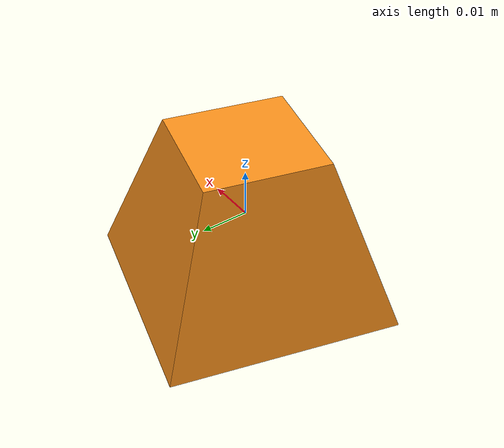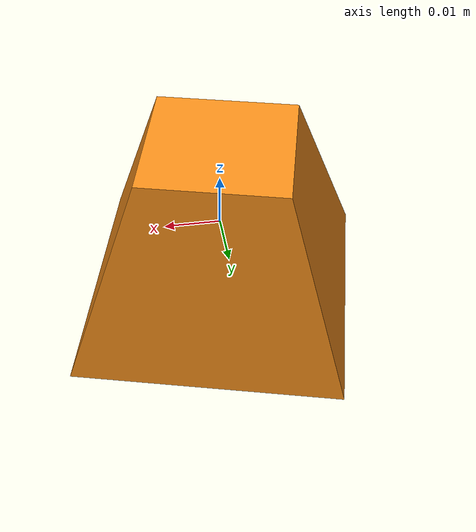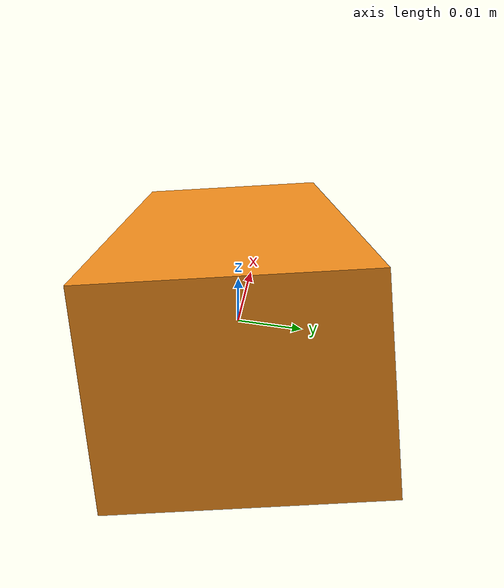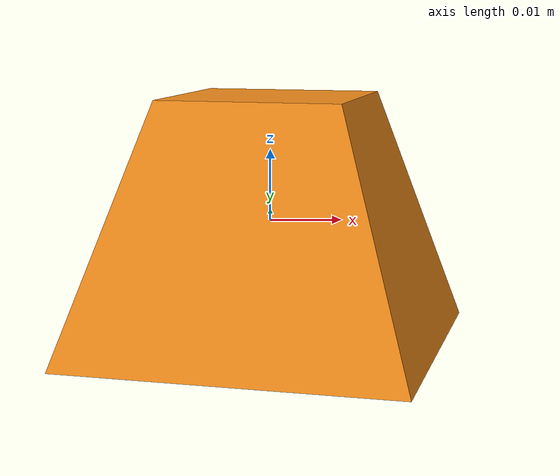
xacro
<?xml version="1.0"?>
<!-- Revolute-Revolute Manipulator -->
<robot name="centrum_6" xmlns:xacro="http://www.ros.org/wiki/xacro">

  <!-- Constants for robot dimensions -->
  <xacro:property name="PI" value="3.1415926535897931"/>
  <xacro:property name="mass" value="0.01" /> <!-- arbitrary value for mass -->

  <xacro:include filename="$(find object_description)/urdf/materials.xacro" />

  <link name="world"/>

  <joint name="world_centrum_6" type="floating">
    <parent link="world"/>
    <child link="centrum_6"/>
    <origin xyz="0 0 0" rpy="0 0 ${PI/6}"/>
  </joint>

  <!-- table -->
  <link name="centrum_6">

    <visual>
      <origin xyz="0 0 0" rpy="0 0 0"/>
      <geometry>
	<mesh filename="package://object_description/meshes/centrum_6.stl" scale="1 1 1" />
      </geometry>
      <material name="orange"/>
    </visual>

    <collision>
      <origin xyz="0 0 0" rpy="0 0 0"/>
      <geometry>
	<mesh filename="package://object_description/meshes/centrum_6.stl" scale="1 1 1" />
      </geometry>
    </collision>

    <inertial>
      <origin xyz="0 0 0" rpy="0 0 0"/>
      <mass value="${mass}"/>
      <inertia
	  ixx="0.00000364583333" ixy="0.0" ixz="0.0"
	  iyy="0.00000364583333" iyz="0.0"
	  izz="0.000003125" />
    </inertial>
  </link>

  <gazebo reference="centrum_6">
    <material>Gazebo/Wood</material>
    <mu1>10000</mu1>
    <mu2>5000</mu2>
    <kp>10000.0</kp>
    <kd>1.0</kd>
  </gazebo>

</robot>
